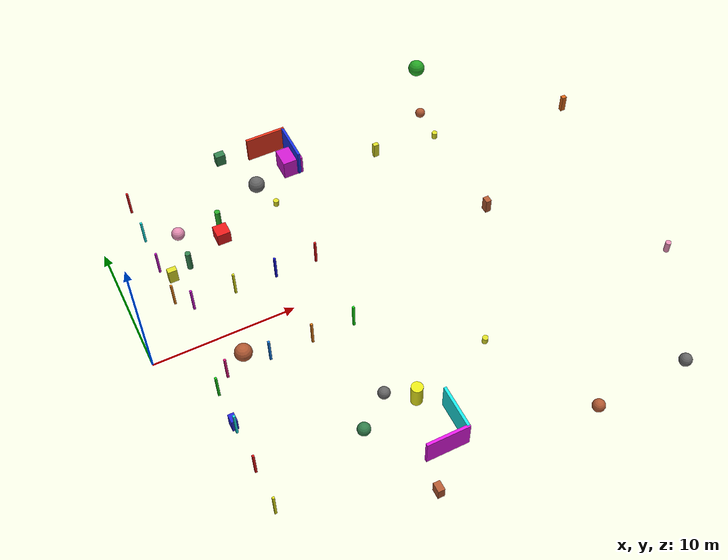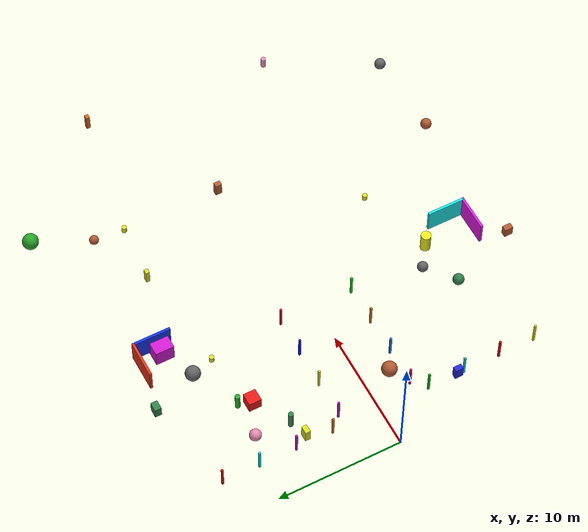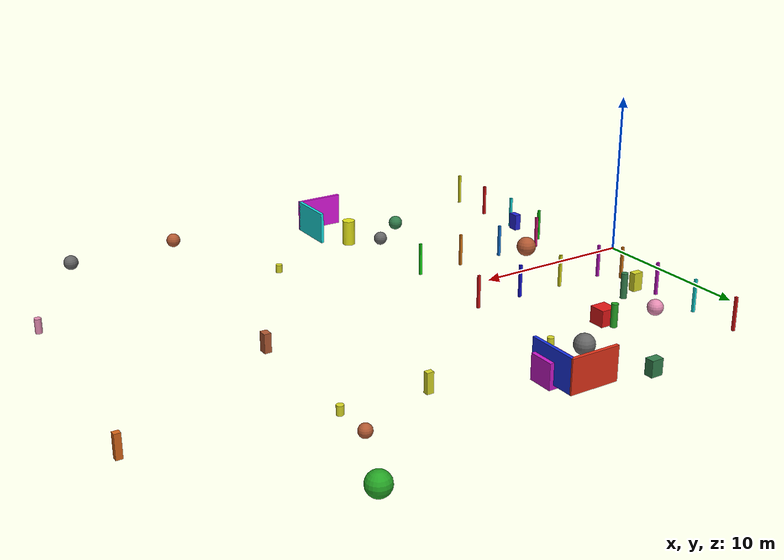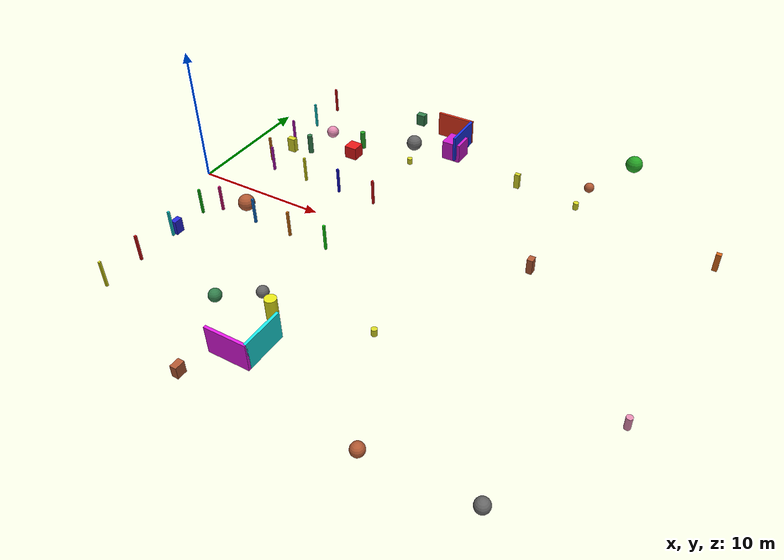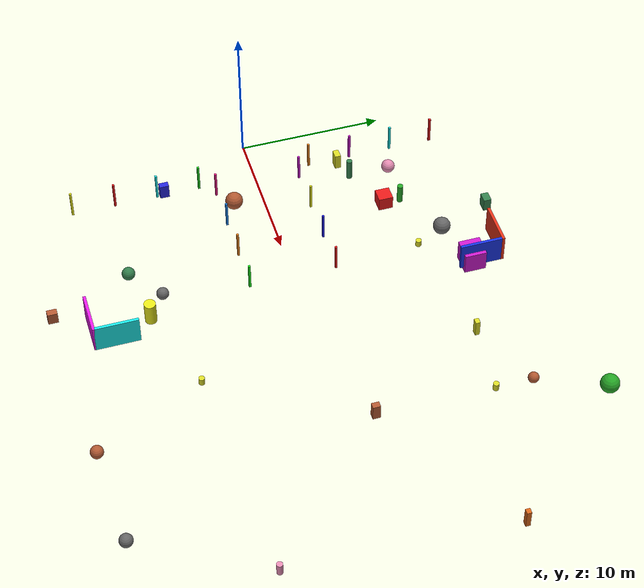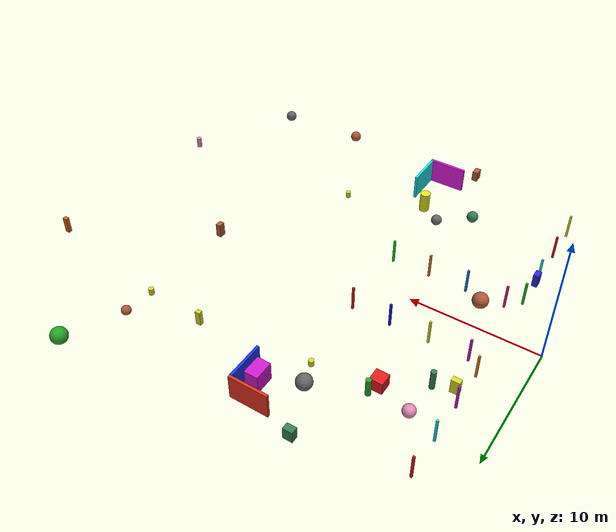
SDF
<sdf version="1.9">
 <world name="default">
  <model name="red_box1">
   <static>true</static>
   <pose>8 8 0.25 0 0 0</pose>
   <link name="link">
    <visual name="visual">
     <geometry><box><size>1.0 1.0 1.0</size></box></geometry>
     <material><ambient>0.90 0.10 0.10 1</ambient><diffuse>0.90 0.10 0.10 1</diffuse></material>
    </visual>
    <collision name="collision"><geometry><box><size>1.0 1.0 1.0</size></box></geometry></collision>
   </link>
  </model>
  <model name="yellow_cyl1">
   <static>true</static>
   <pose>14 -10 0.8 0 0 0</pose>
   <link name="link">
    <visual name="visual">
     <geometry><cylinder><radius>0.4</radius><length>1.6</length></cylinder></geometry>
     <material><ambient>0.90 0.90 0.10 1</ambient><diffuse>0.90 0.90 0.10 1</diffuse></material>
    </visual>
    <collision name="collision">
     <geometry><cylinder><radius>0.4</radius><length>1.6</length></cylinder></geometry>
    </collision>
   </link>
  </model>
  <model name="purple_box">
   <static>true</static>
   <pose>15 12 0.5 0 0 0</pose>
   <link name="link">
    <visual name="visual">
     <geometry><box><size>1.5 1.5 1.5</size></box></geometry>
     <material><ambient>0.80 0.10 0.80 1</ambient><diffuse>0.80 0.10 0.80 1</diffuse></material>
    </visual>
    <collision name="collision"><geometry><box><size>1.5 1.5 1.5</size></box></geometry></collision>
   </link>
  </model>
  <model name="vo_collision_support_base">
   <static>true</static>
   <link name="support_link">
    <pose>0 0 -0.001 0 0 0</pose>
    <collision name="collision">
     <geometry><box><size>90.0 90.0 0.002</size></box></geometry>
     <surface><friction><ode><mu>1.0</mu><mu2>1.0</mu2></ode></friction></surface>
    </collision>
   </link>
  </model>
  <model name="fence_n05">
   <static>true</static>
   <pose>3 4 1.0 0 0 0</pose>
   <link name="l">
    <visual name="v">
     <geometry><box><size>0.15 0.15 2.0</size></box></geometry>
     <material><ambient>0.9 0.5 0.1 1</ambient><diffuse>0.9 0.5 0.1 1</diffuse></material>
    </visual>
    <collision name="c"><geometry><box><size>0.15 0.15 2.0</size></box></geometry></collision>
   </link>
  </model>
  <model name="fence_n06">
   <static>true</static>
   <pose>3 7 1.0 0 0 0</pose>
   <link name="l">
    <visual name="v">
     <geometry><box><size>0.15 0.15 2.0</size></box></geometry>
     <material><ambient>0.8 0.1 0.8 1</ambient><diffuse>0.8 0.1 0.8 1</diffuse></material>
    </visual>
    <collision name="c"><geometry><box><size>0.15 0.15 2.0</size></box></geometry></collision>
   </link>
  </model>
  <model name="fence_n07">
   <static>true</static>
   <pose>3 10 1.0 0 0 0</pose>
   <link name="l">
    <visual name="v">
     <geometry><box><size>0.15 0.15 2.0</size></box></geometry>
     <material><ambient>0.1 0.9 0.9 1</ambient><diffuse>0.1 0.9 0.9 1</diffuse></material>
    </visual>
    <collision name="c"><geometry><box><size>0.15 0.15 2.0</size></box></geometry></collision>
   </link>
  </model>
  <model name="fence_n08">
   <static>true</static>
   <pose>3 13 1.0 0 0 0</pose>
   <link name="l">
    <visual name="v">
     <geometry><box><size>0.15 0.15 2.0</size></box></geometry>
     <material><ambient>0.9 0.1 0.1 1</ambient><diffuse>0.9 0.1 0.1 1</diffuse></material>
    </visual>
    <collision name="c"><geometry><box><size>0.15 0.15 2.0</size></box></geometry></collision>
   </link>
  </model>
  <model name="fence_s05">
   <static>true</static>
   <pose>3 -4 1.0 0 0 0</pose>
   <link name="l">
    <visual name="v">
     <geometry><box><size>0.15 0.15 2.0</size></box></geometry>
     <material><ambient>0.1 0.8 0.1 1</ambient><diffuse>0.1 0.8 0.1 1</diffuse></material>
    </visual>
    <collision name="c"><geometry><box><size>0.15 0.15 2.0</size></box></geometry></collision>
   </link>
  </model>
  <model name="fence_s06">
   <static>true</static>
   <pose>3 -7 1.0 0 0 0</pose>
   <link name="l">
    <visual name="v">
     <geometry><box><size>0.15 0.15 2.0</size></box></geometry>
     <material><ambient>0.1 0.9 0.9 1</ambient><diffuse>0.1 0.9 0.9 1</diffuse></material>
    </visual>
    <collision name="c"><geometry><box><size>0.15 0.15 2.0</size></box></geometry></collision>
   </link>
  </model>
  <model name="fence_s07">
   <static>true</static>
   <pose>3 -10 1.0 0 0 0</pose>
   <link name="l">
    <visual name="v">
     <geometry><box><size>0.15 0.15 2.0</size></box></geometry>
     <material><ambient>0.9 0.1 0.1 1</ambient><diffuse>0.9 0.1 0.1 1</diffuse></material>
    </visual>
    <collision name="c"><geometry><box><size>0.15 0.15 2.0</size></box></geometry></collision>
   </link>
  </model>
  <model name="fence_s08">
   <static>true</static>
   <pose>3 -13 1.0 0 0 0</pose>
   <link name="l">
    <visual name="v">
     <geometry><box><size>0.15 0.15 2.0</size></box></geometry>
     <material><ambient>0.9 0.9 0.1 1</ambient><diffuse>0.9 0.9 0.1 1</diffuse></material>
    </visual>
    <collision name="c"><geometry><box><size>0.15 0.15 2.0</size></box></geometry></collision>
   </link>
  </model>
  <model name="fence_e01">
   <static>true</static>
   <pose>4 -3 1.0 0 0 0</pose>
   <link name="l">
    <visual name="v">
     <geometry><box><size>0.15 0.15 2.0</size></box></geometry>
     <material><ambient>0.9 0.1 0.5 1</ambient><diffuse>0.9 0.1 0.5 1</diffuse></material>
    </visual>
    <collision name="c"><geometry><box><size>0.15 0.15 2.0</size></box></geometry></collision>
   </link>
  </model>
  <model name="fence_e02">
   <static>true</static>
   <pose>7 -3 1.0 0 0 0</pose>
   <link name="l">
    <visual name="v">
     <geometry><box><size>0.15 0.15 2.0</size></box></geometry>
     <material><ambient>0.1 0.5 0.9 1</ambient><diffuse>0.1 0.5 0.9 1</diffuse></material>
    </visual>
    <collision name="c"><geometry><box><size>0.15 0.15 2.0</size></box></geometry></collision>
   </link>
  </model>
  <model name="fence_e03">
   <static>true</static>
   <pose>10 -3 1.0 0 0 0</pose>
   <link name="l">
    <visual name="v">
     <geometry><box><size>0.15 0.15 2.0</size></box></geometry>
     <material><ambient>0.9 0.5 0.1 1</ambient><diffuse>0.9 0.5 0.1 1</diffuse></material>
    </visual>
    <collision name="c"><geometry><box><size>0.15 0.15 2.0</size></box></geometry></collision>
   </link>
  </model>
  <model name="fence_e04">
   <static>true</static>
   <pose>13 -3 1.0 0 0 0</pose>
   <link name="l">
    <visual name="v">
     <geometry><box><size>0.15 0.15 2.0</size></box></geometry>
     <material><ambient>0.1 0.9 0.1 1</ambient><diffuse>0.1 0.9 0.1 1</diffuse></material>
    </visual>
    <collision name="c"><geometry><box><size>0.15 0.15 2.0</size></box></geometry></collision>
   </link>
  </model>
  <model name="fence_e05">
   <static>true</static>
   <pose>4 3 1.0 0 0 0</pose>
   <link name="l">
    <visual name="v">
     <geometry><box><size>0.15 0.15 2.0</size></box></geometry>
     <material><ambient>0.8 0.1 0.8 1</ambient><diffuse>0.8 0.1 0.8 1</diffuse></material>
    </visual>
    <collision name="c"><geometry><box><size>0.15 0.15 2.0</size></box></geometry></collision>
   </link>
  </model>
  <model name="fence_e06">
   <static>true</static>
   <pose>7 3 1.0 0 0 0</pose>
   <link name="l">
    <visual name="v">
     <geometry><box><size>0.15 0.15 2.0</size></box></geometry>
     <material><ambient>0.9 0.9 0.1 1</ambient><diffuse>0.9 0.9 0.1 1</diffuse></material>
    </visual>
    <collision name="c"><geometry><box><size>0.15 0.15 2.0</size></box></geometry></collision>
   </link>
  </model>
  <model name="fence_e07">
   <static>true</static>
   <pose>10 3 1.0 0 0 0</pose>
   <link name="l">
    <visual name="v">
     <geometry><box><size>0.15 0.15 2.0</size></box></geometry>
     <material><ambient>0.1 0.1 0.9 1</ambient><diffuse>0.1 0.1 0.9 1</diffuse></material>
    </visual>
    <collision name="c"><geometry><box><size>0.15 0.15 2.0</size></box></geometry></collision>
   </link>
  </model>
  <model name="fence_e08">
   <static>true</static>
   <pose>13 3 1.0 0 0 0</pose>
   <link name="l">
    <visual name="v">
     <geometry><box><size>0.15 0.15 2.0</size></box></geometry>
     <material><ambient>0.9 0.1 0.1 1</ambient><diffuse>0.9 0.1 0.1 1</diffuse></material>
    </visual>
    <collision name="c"><geometry><box><size>0.15 0.15 2.0</size></box></geometry></collision>
   </link>
  </model>
  <model name="wall_corner_NE">
   <static>true</static>
   <pose>14 14 0 0 0 0</pose>
   <link name="wall_a">
    <pose>0 0 1.0 0 0 0</pose>
    <visual name="v">
     <geometry><box><size>3.0 0.2 2.0</size></box></geometry>
     <material><ambient>0.9 0.2 0.1 1</ambient><diffuse>0.9 0.2 0.1 1</diffuse></material>
    </visual>
    <collision name="c"><geometry><box><size>3.0 0.2 2.0</size></box></geometry></collision>
   </link>
   <link name="wall_b">
    <pose>1.4 -1.5 1.0 0 0 0</pose>
    <visual name="v">
     <geometry><box><size>0.2 3.0 2.0</size></box></geometry>
     <material><ambient>0.1 0.2 0.9 1</ambient><diffuse>0.1 0.2 0.9 1</diffuse></material>
    </visual>
    <collision name="c"><geometry><box><size>0.2 3.0 2.0</size></box></geometry></collision>
   </link>
  </model>
  <model name="wall_corner_SE">
   <static>true</static>
   <pose>14 -14 0 0 0 0</pose>
   <link name="wall_a">
    <pose>0 0 1.0 0 0 0</pose>
    <visual name="v">
     <geometry><box><size>3.0 0.2 2.0</size></box></geometry>
     <material><ambient>0.9 0.1 0.9 1</ambient><diffuse>0.9 0.1 0.9 1</diffuse></material>
    </visual>
    <collision name="c"><geometry><box><size>3.0 0.2 2.0</size></box></geometry></collision>
   </link>
   <link name="wall_b">
    <pose>1.4 1.5 1.0 0 0 0</pose>
    <visual name="v">
     <geometry><box><size>0.2 3.0 2.0</size></box></geometry>
     <material><ambient>0.1 0.9 0.9 1</ambient><diffuse>0.1 0.9 0.9 1</diffuse></material>
    </visual>
    <collision name="c"><geometry><box><size>0.2 3.0 2.0</size></box></geometry></collision>
   </link>
  </model>
  <model name="obj_0">
   <static>true</static>
   <pose>5.5 -2.1 0.6 0 0 0</pose>
   <link name="link">
    <visual name="visual">
     <geometry><sphere><radius>0.61</radius></sphere></geometry>
     <material><ambient>0.70 0.35 0.20 1</ambient><diffuse>0.70 0.35 0.20 1</diffuse></material>
    </visual>
    <collision name="collision"><geometry><sphere><radius>0.61</radius></sphere></geometry></collision>
   </link>
  </model>
  <model name="obj_1">
   <static>true</static>
   <pose>28.1 16.6 0.6 0 0 0</pose>
   <link name="link">
    <visual name="visual">
     <geometry><sphere><radius>0.64</radius></sphere></geometry>
     <material><ambient>0.15 0.65 0.15 1</ambient><diffuse>0.15 0.65 0.15 1</diffuse></material>
    </visual>
    <collision name="collision"><geometry><sphere><radius>0.64</radius></sphere></geometry></collision>
   </link>
  </model>
  <model name="obj_2">
   <static>true</static>
   <pose>3.6 5.9 0.6 0 0 0</pose>
   <link name="link">
    <visual name="visual">
     <geometry><box><size>0.64 0.41 1.14</size></box></geometry>
     <material><ambient>0.85 0.85 0.15 1</ambient><diffuse>0.85 0.85 0.15 1</diffuse></material>
    </visual>
    <collision name="collision"><geometry><box><size>0.64 0.41 1.14</size></box></geometry></collision>
   </link>
  </model>
  <model name="obj_4">
   <static>true</static>
   <pose>30.8 -15.4 0.4 0 0 0</pose>
   <link name="link">
    <visual name="visual">
     <geometry><sphere><radius>0.45</radius></sphere></geometry>
     <material><ambient>0.40 0.40 0.40 1</ambient><diffuse>0.40 0.40 0.40 1</diffuse></material>
    </visual>
    <collision name="collision"><geometry><sphere><radius>0.45</radius></sphere></geometry></collision>
   </link>
  </model>
  <model name="obj_6">
   <static>true</static>
   <pose>26.0 9.7 0.3 0 0 0</pose>
   <link name="link">
    <visual name="visual">
     <geometry><cylinder><radius>0.2</radius><length>0.53</length></cylinder></geometry>
     <material><ambient>0.85 0.85 0.15 1</ambient><diffuse>0.85 0.85 0.15 1</diffuse></material>
    </visual>
    <collision name="collision">
     <geometry><cylinder><radius>0.2</radius><length>0.53</length></cylinder></geometry>
    </collision>
   </link>
  </model>
  <model name="obj_8">
   <static>true</static>
   <pose>11.9 10.9 0.6 0 0 0</pose>
   <link name="link">
    <visual name="visual">
     <geometry><sphere><radius>0.60</radius></sphere></geometry>
     <material><ambient>0.40 0.40 0.40 1</ambient><diffuse>0.40 0.40 0.40 1</diffuse></material>
    </visual>
    <collision name="collision"><geometry><sphere><radius>0.60</radius></sphere></geometry></collision>
   </link>
  </model>
  <model name="obj_9">
   <static>true</static>
   <pose>5.2 9.2 0.5 0 0 0</pose>
   <link name="link">
    <visual name="visual">
     <geometry><sphere><radius>0.47</radius></sphere></geometry>
     <material><ambient>0.90 0.55 0.70 1</ambient><diffuse>0.90 0.55 0.70 1</diffuse></material>
    </visual>
    <collision name="collision"><geometry><sphere><radius>0.47</radius></sphere></geometry></collision>
   </link>
  </model>
  <model name="obj_10">
   <static>true</static>
   <pose>10.5 14.6 0.5 0 0 0</pose>
   <link name="link">
    <visual name="visual">
     <geometry><box><size>0.73 0.53 0.94</size></box></geometry>
     <material><ambient>0.20 0.50 0.30 1</ambient><diffuse>0.20 0.50 0.30 1</diffuse></material>
    </visual>
    <collision name="collision"><geometry><box><size>0.73 0.53 0.94</size></box></geometry></collision>
   </link>
  </model>
  <model name="obj_11">
   <static>true</static>
   <pose>26.1 12.2 0.4 0 0 0</pose>
   <link name="link">
    <visual name="visual">
     <geometry><sphere><radius>0.37</radius></sphere></geometry>
     <material><ambient>0.70 0.35 0.20 1</ambient><diffuse>0.70 0.35 0.20 1</diffuse></material>
    </visual>
    <collision name="collision"><geometry><sphere><radius>0.37</radius></sphere></geometry></collision>
   </link>
  </model>
  <model name="obj_12">
   <static>true</static>
   <pose>20.1 -8.1 0.2 0 0 0</pose>
   <link name="link">
    <visual name="visual">
     <geometry><cylinder><radius>0.2</radius><length>0.49</length></cylinder></geometry>
     <material><ambient>0.85 0.85 0.15 1</ambient><diffuse>0.85 0.85 0.15 1</diffuse></material>
    </visual>
    <collision name="collision">
     <geometry><cylinder><radius>0.2</radius><length>0.49</length></cylinder></geometry>
    </collision>
   </link>
  </model>
  <model name="obj_13">
   <static>true</static>
   <pose>3.0 -6.5 0.5 0 0 0</pose>
   <link name="link">
    <visual name="visual">
     <geometry><box><size>0.42 0.65 1.05</size></box></geometry>
     <material><ambient>0.15 0.15 0.85 1</ambient><diffuse>0.15 0.15 0.85 1</diffuse></material>
    </visual>
    <collision name="collision"><geometry><box><size>0.42 0.65 1.05</size></box></geometry></collision>
   </link>
  </model>
  <model name="obj_14">
   <static>true</static>
   <pose>23.9 -15.7 0.4 0 0 0</pose>
   <link name="link">
    <visual name="visual">
     <geometry><sphere><radius>0.44</radius></sphere></geometry>
     <material><ambient>0.70 0.35 0.20 1</ambient><diffuse>0.70 0.35 0.20 1</diffuse></material>
    </visual>
    <collision name="collision"><geometry><sphere><radius>0.44</radius></sphere></geometry></collision>
   </link>
  </model>
  <model name="obj_15">
   <static>true</static>
   <pose>10.0 -10.6 0.5 0 0 0</pose>
   <link name="link">
    <visual name="visual">
     <geometry><sphere><radius>0.45</radius></sphere></geometry>
     <material><ambient>0.20 0.50 0.30 1</ambient><diffuse>0.20 0.50 0.30 1</diffuse></material>
    </visual>
    <collision name="collision"><geometry><sphere><radius>0.45</radius></sphere></geometry></collision>
   </link>
  </model>
  <model name="obj_17">
   <static>true</static>
   <pose>35.3 -7.2 0.4 0 0 0</pose>
   <link name="link">
    <visual name="visual">
     <geometry><cylinder><radius>0.2</radius><length>0.87</length></cylinder></geometry>
     <material><ambient>0.90 0.55 0.70 1</ambient><diffuse>0.90 0.55 0.70 1</diffuse></material>
    </visual>
    <collision name="collision">
     <geometry><cylinder><radius>0.2</radius><length>0.87</length></cylinder></geometry>
    </collision>
   </link>
  </model>
  <model name="obj_18">
   <static>true</static>
   <pose>25.9 1.7 0.6 0 0 0</pose>
   <link name="link">
    <visual name="visual">
     <geometry><box><size>0.41 0.52 1.12</size></box></geometry>
     <material><ambient>0.70 0.35 0.20 1</ambient><diffuse>0.70 0.35 0.20 1</diffuse></material>
    </visual>
    <collision name="collision"><geometry><box><size>0.41 0.52 1.12</size></box></geometry></collision>
   </link>
  </model>
  <model name="obj_22">
   <static>true</static>
   <pose>12.2 -16.2 0.4 0 0 0</pose>
   <link name="link">
    <visual name="visual">
     <geometry><box><size>0.46 0.68 0.85</size></box></geometry>
     <material><ambient>0.70 0.35 0.20 1</ambient><diffuse>0.70 0.35 0.20 1</diffuse></material>
    </visual>
    <collision name="collision"><geometry><box><size>0.46 0.68 0.85</size></box></geometry></collision>
   </link>
  </model>
  <model name="obj_23">
   <static>true</static>
   <pose>8.2 9.1 0.7 0 0 0</pose>
   <link name="link">
    <visual name="visual">
     <geometry><cylinder><radius>0.2</radius><length>1.40</length></cylinder></geometry>
     <material><ambient>0.15 0.65 0.15 1</ambient><diffuse>0.15 0.65 0.15 1</diffuse></material>
    </visual>
    <collision name="collision">
     <geometry><cylinder><radius>0.2</radius><length>1.40</length></cylinder></geometry>
    </collision>
   </link>
  </model>
  <model name="obj_24">
   <static>true</static>
   <pose>12.6 9.0 0.2 0 0 0</pose>
   <link name="link">
    <visual name="visual">
     <geometry><cylinder><radius>0.2</radius><length>0.46</length></cylinder></geometry>
     <material><ambient>0.85 0.85 0.15 1</ambient><diffuse>0.85 0.85 0.15 1</diffuse></material>
    </visual>
    <collision name="collision">
     <geometry><cylinder><radius>0.2</radius><length>0.46</length></cylinder></geometry>
    </collision>
   </link>
  </model>
  <model name="obj_25">
   <static>true</static>
   <pose>21.2 10.1 0.6 0 0 0</pose>
   <link name="link">
    <visual name="visual">
     <geometry><box><size>0.40 0.31 1.18</size></box></geometry>
     <material><ambient>0.85 0.85 0.15 1</ambient><diffuse>0.85 0.85 0.15 1</diffuse></material>
    </visual>
    <collision name="collision"><geometry><box><size>0.40 0.31 1.18</size></box></geometry></collision>
   </link>
  </model>
  <model name="obj_27">
   <static>true</static>
   <pose>12.3 -8.8 0.4 0 0 0</pose>
   <link name="link">
    <visual name="visual">
     <geometry><sphere><radius>0.42</radius></sphere></geometry>
     <material><ambient>0.40 0.40 0.40 1</ambient><diffuse>0.40 0.40 0.40 1</diffuse></material>
    </visual>
    <collision name="collision"><geometry><sphere><radius>0.42</radius></sphere></geometry></collision>
   </link>
  </model>
  <model name="obj_28">
   <static>true</static>
   <pose>36.3 7.9 0.7 0 0 0</pose>
   <link name="link">
    <visual name="visual">
     <geometry><box><size>0.35 0.31 1.33</size></box></geometry>
     <material><ambient>0.85 0.40 0.10 1</ambient><diffuse>0.85 0.40 0.10 1</diffuse></material>
    </visual>
    <collision name="collision"><geometry><box><size>0.35 0.31 1.33</size></box></geometry></collision>
   </link>
  </model>
  <model name="obj_29">
   <static>true</static>
   <pose>5.0 6.4 0.8 0 0 0</pose>
   <link name="link">
    <visual name="visual">
     <geometry><cylinder><radius>0.2</radius><length>1.55</length></cylinder></geometry>
     <material><ambient>0.20 0.50 0.30 1</ambient><diffuse>0.20 0.50 0.30 1</diffuse></material>
    </visual>
    <collision name="collision">
     <geometry><cylinder><radius>0.2</radius><length>1.55</length></cylinder></geometry>
    </collision>
   </link>
  </model>
 </world>
</sdf>
